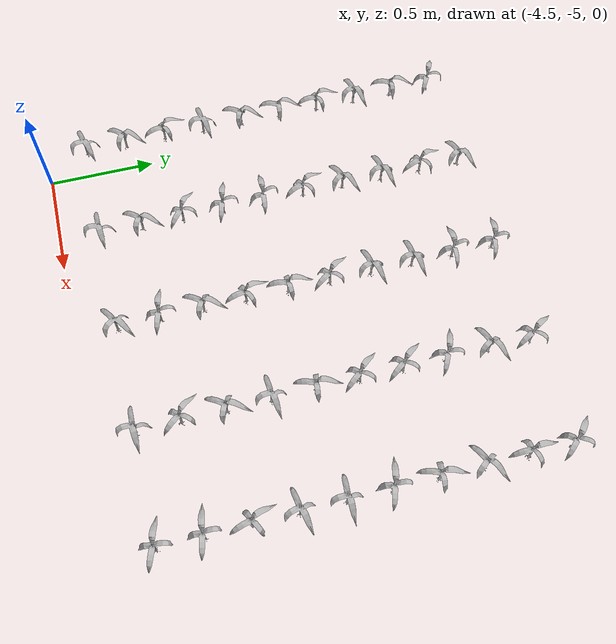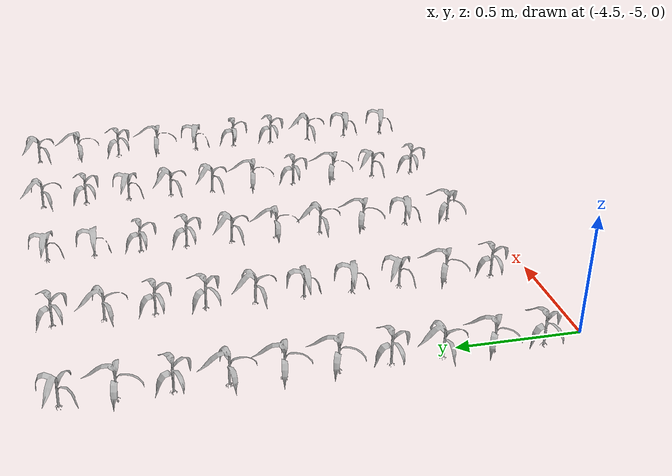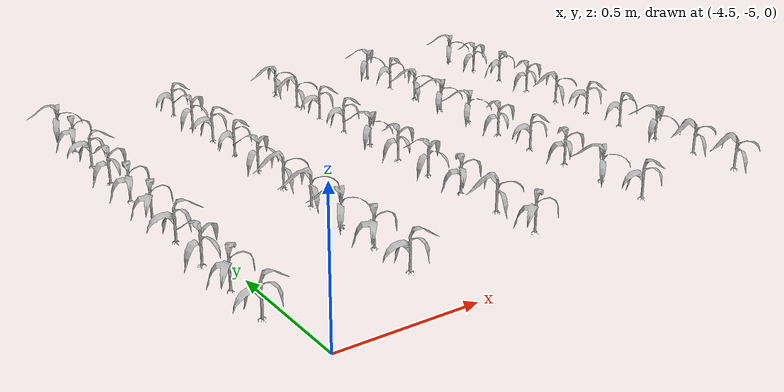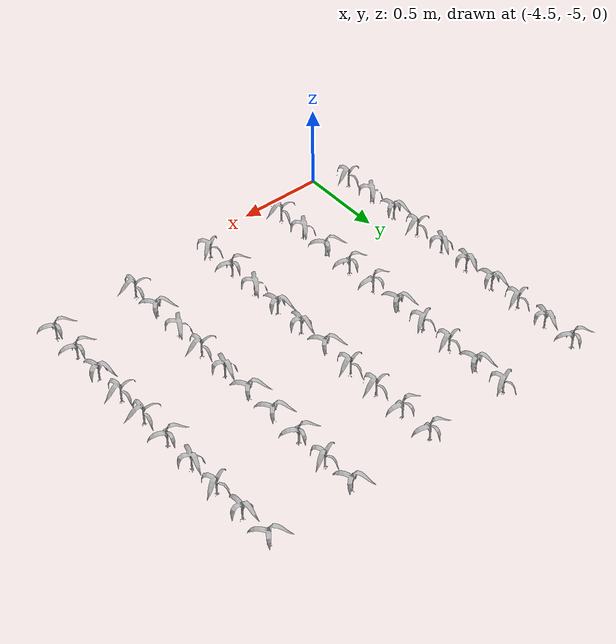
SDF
<sdf version="1.7">
 <world name="default">
  <model name="maize_-4.6_-4.8">
   <static>1</static>
   <link name="link">
    <inertial>
     <mass>0.2</mass>
     <inertia>
      <ixx>0.166667</ixx>
      <ixy>0</ixy>
      <ixz>0</ixz>
      <iyy>0.166667</iyy>
      <iyz>0</iyz>
      <izz>0.166667</izz>
     </inertia>
    </inertial>
    <collision name="collision">
     <geometry><mesh><uri>model://corn_3/meshes/corn.dae</uri><scale>0.25 0.25 0.25</scale></mesh></geometry>
     <surface>
      <friction><ode><mu>0</mu><mu2>0</mu2></ode></friction>
      <contact><ode><kp>0</kp><kd>0</kd><max_vel>0</max_vel><min_depth>0.002</min_depth></ode></contact>
     </surface>
    </collision>
    <visual name="visual">
     <geometry><mesh><uri>model://corn_3/meshes/corn.dae</uri><scale>0.25 0.25 0.25</scale></mesh></geometry>
    </visual>
    <velocity_decay><linear>0</linear><angular>0</angular></velocity_decay>
   </link>
   <pose>-4.6 -4.8 0.05 0 -0 0.344692</pose>
  </model>
  <model name="maize_-4.6_-4.6049999999999995">
   <static>1</static>
   <link name="link">
    <inertial>
     <mass>0.2</mass>
     <inertia>
      <ixx>0.166667</ixx>
      <ixy>0</ixy>
      <ixz>0</ixz>
      <iyy>0.166667</iyy>
      <iyz>0</iyz>
      <izz>0.166667</izz>
     </inertia>
    </inertial>
    <collision name="collision">
     <geometry><mesh><uri>model://corn_3/meshes/corn.dae</uri><scale>0.25 0.25 0.25</scale></mesh></geometry>
     <surface>
      <friction><ode><mu>0</mu><mu2>0</mu2></ode></friction>
      <contact><ode><kp>0</kp><kd>0</kd><max_vel>0</max_vel><min_depth>0.002</min_depth></ode></contact>
     </surface>
    </collision>
    <visual name="visual">
     <geometry><mesh><uri>model://corn_3/meshes/corn.dae</uri><scale>0.25 0.25 0.25</scale></mesh></geometry>
    </visual>
    <velocity_decay><linear>0</linear><angular>0</angular></velocity_decay>
   </link>
   <pose>-4.6 -4.605 0.05 0 -0 1.00106</pose>
  </model>
  <model name="maize_-4.6_-4.41">
   <static>1</static>
   <link name="link">
    <inertial>
     <mass>0.2</mass>
     <inertia>
      <ixx>0.166667</ixx>
      <ixy>0</ixy>
      <ixz>0</ixz>
      <iyy>0.166667</iyy>
      <iyz>0</iyz>
      <izz>0.166667</izz>
     </inertia>
    </inertial>
    <collision name="collision">
     <geometry><mesh><uri>model://corn_3/meshes/corn.dae</uri><scale>0.25 0.25 0.25</scale></mesh></geometry>
     <surface>
      <friction><ode><mu>0</mu><mu2>0</mu2></ode></friction>
      <contact><ode><kp>0</kp><kd>0</kd><max_vel>0</max_vel><min_depth>0.002</min_depth></ode></contact>
     </surface>
    </collision>
    <visual name="visual">
     <geometry><mesh><uri>model://corn_3/meshes/corn.dae</uri><scale>0.25 0.25 0.25</scale></mesh></geometry>
    </visual>
    <velocity_decay><linear>0</linear><angular>0</angular></velocity_decay>
   </link>
   <pose>-4.6 -4.41 0.05 0 -0 1.87486</pose>
  </model>
  <model name="maize_-4.6_-4.215">
   <static>1</static>
   <link name="link">
    <inertial>
     <mass>0.2</mass>
     <inertia>
      <ixx>0.166667</ixx>
      <ixy>0</ixy>
      <ixz>0</ixz>
      <iyy>0.166667</iyy>
      <iyz>0</iyz>
      <izz>0.166667</izz>
     </inertia>
    </inertial>
    <collision name="collision">
     <geometry><mesh><uri>model://corn_3/meshes/corn.dae</uri><scale>0.25 0.25 0.25</scale></mesh></geometry>
     <surface>
      <friction><ode><mu>0</mu><mu2>0</mu2></ode></friction>
      <contact><ode><kp>0</kp><kd>0</kd><max_vel>0</max_vel><min_depth>0.002</min_depth></ode></contact>
     </surface>
    </collision>
    <visual name="visual">
     <geometry><mesh><uri>model://corn_3/meshes/corn.dae</uri><scale>0.25 0.25 0.25</scale></mesh></geometry>
    </visual>
    <velocity_decay><linear>0</linear><angular>0</angular></velocity_decay>
   </link>
   <pose>-4.6 -4.215 0.05 0 -0 0.240081</pose>
  </model>
  <model name="maize_-4.6_-4.02">
   <static>1</static>
   <link name="link">
    <inertial>
     <mass>0.2</mass>
     <inertia>
      <ixx>0.166667</ixx>
      <ixy>0</ixy>
      <ixz>0</ixz>
      <iyy>0.166667</iyy>
      <iyz>0</iyz>
      <izz>0.166667</izz>
     </inertia>
    </inertial>
    <collision name="collision">
     <geometry><mesh><uri>model://corn_3/meshes/corn.dae</uri><scale>0.25 0.25 0.25</scale></mesh></geometry>
     <surface>
      <friction><ode><mu>0</mu><mu2>0</mu2></ode></friction>
      <contact><ode><kp>0</kp><kd>0</kd><max_vel>0</max_vel><min_depth>0.002</min_depth></ode></contact>
     </surface>
    </collision>
    <visual name="visual">
     <geometry><mesh><uri>model://corn_3/meshes/corn.dae</uri><scale>0.25 0.25 0.25</scale></mesh></geometry>
    </visual>
    <velocity_decay><linear>0</linear><angular>0</angular></velocity_decay>
   </link>
   <pose>-4.6 -4.02 0.05 0 -0 1.14849</pose>
  </model>
  <model name="maize_-4.6_-3.8249999999999997">
   <static>1</static>
   <link name="link">
    <inertial>
     <mass>0.2</mass>
     <inertia>
      <ixx>0.166667</ixx>
      <ixy>0</ixy>
      <ixz>0</ixz>
      <iyy>0.166667</iyy>
      <iyz>0</iyz>
      <izz>0.166667</izz>
     </inertia>
    </inertial>
    <collision name="collision">
     <geometry><mesh><uri>model://corn_3/meshes/corn.dae</uri><scale>0.25 0.25 0.25</scale></mesh></geometry>
     <surface>
      <friction><ode><mu>0</mu><mu2>0</mu2></ode></friction>
      <contact><ode><kp>0</kp><kd>0</kd><max_vel>0</max_vel><min_depth>0.002</min_depth></ode></contact>
     </surface>
    </collision>
    <visual name="visual">
     <geometry><mesh><uri>model://corn_3/meshes/corn.dae</uri><scale>0.25 0.25 0.25</scale></mesh></geometry>
    </visual>
    <velocity_decay><linear>0</linear><angular>0</angular></velocity_decay>
   </link>
   <pose>-4.6 -3.825 0.05 0 -0 1.35753</pose>
  </model>
  <model name="maize_-4.6_-3.63">
   <static>1</static>
   <link name="link">
    <inertial>
     <mass>0.2</mass>
     <inertia>
      <ixx>0.166667</ixx>
      <ixy>0</ixy>
      <ixz>0</ixz>
      <iyy>0.166667</iyy>
      <iyz>0</iyz>
      <izz>0.166667</izz>
     </inertia>
    </inertial>
    <collision name="collision">
     <geometry><mesh><uri>model://corn_3/meshes/corn.dae</uri><scale>0.25 0.25 0.25</scale></mesh></geometry>
     <surface>
      <friction><ode><mu>0</mu><mu2>0</mu2></ode></friction>
      <contact><ode><kp>0</kp><kd>0</kd><max_vel>0</max_vel><min_depth>0.002</min_depth></ode></contact>
     </surface>
    </collision>
    <visual name="visual">
     <geometry><mesh><uri>model://corn_3/meshes/corn.dae</uri><scale>0.25 0.25 0.25</scale></mesh></geometry>
    </visual>
    <velocity_decay><linear>0</linear><angular>0</angular></velocity_decay>
   </link>
   <pose>-4.6 -3.63 0.05 0 -0 1.73707</pose>
  </model>
  <model name="maize_-4.6_-3.4349999999999996">
   <static>1</static>
   <link name="link">
    <inertial>
     <mass>0.2</mass>
     <inertia>
      <ixx>0.166667</ixx>
      <ixy>0</ixy>
      <ixz>0</ixz>
      <iyy>0.166667</iyy>
      <iyz>0</iyz>
      <izz>0.166667</izz>
     </inertia>
    </inertial>
    <collision name="collision">
     <geometry><mesh><uri>model://corn_3/meshes/corn.dae</uri><scale>0.25 0.25 0.25</scale></mesh></geometry>
     <surface>
      <friction><ode><mu>0</mu><mu2>0</mu2></ode></friction>
      <contact><ode><kp>0</kp><kd>0</kd><max_vel>0</max_vel><min_depth>0.002</min_depth></ode></contact>
     </surface>
    </collision>
    <visual name="visual">
     <geometry><mesh><uri>model://corn_3/meshes/corn.dae</uri><scale>0.25 0.25 0.25</scale></mesh></geometry>
    </visual>
    <velocity_decay><linear>0</linear><angular>0</angular></velocity_decay>
   </link>
   <pose>-4.6 -3.435 0.05 0 -0 0.358034</pose>
  </model>
  <model name="maize_-4.6_-3.2399999999999998">
   <static>1</static>
   <link name="link">
    <inertial>
     <mass>0.2</mass>
     <inertia>
      <ixx>0.166667</ixx>
      <ixy>0</ixy>
      <ixz>0</ixz>
      <iyy>0.166667</iyy>
      <iyz>0</iyz>
      <izz>0.166667</izz>
     </inertia>
    </inertial>
    <collision name="collision">
     <geometry><mesh><uri>model://corn_3/meshes/corn.dae</uri><scale>0.25 0.25 0.25</scale></mesh></geometry>
     <surface>
      <friction><ode><mu>0</mu><mu2>0</mu2></ode></friction>
      <contact><ode><kp>0</kp><kd>0</kd><max_vel>0</max_vel><min_depth>0.002</min_depth></ode></contact>
     </surface>
    </collision>
    <visual name="visual">
     <geometry><mesh><uri>model://corn_3/meshes/corn.dae</uri><scale>0.25 0.25 0.25</scale></mesh></geometry>
    </visual>
    <velocity_decay><linear>0</linear><angular>0</angular></velocity_decay>
   </link>
   <pose>-4.6 -3.24 0.05 0 -0 1.34912</pose>
  </model>
  <model name="maize_-4.6_-3.045">
   <static>1</static>
   <link name="link">
    <inertial>
     <mass>0.2</mass>
     <inertia>
      <ixx>0.166667</ixx>
      <ixy>0</ixy>
      <ixz>0</ixz>
      <iyy>0.166667</iyy>
      <iyz>0</iyz>
      <izz>0.166667</izz>
     </inertia>
    </inertial>
    <collision name="collision">
     <geometry><mesh><uri>model://corn_3/meshes/corn.dae</uri><scale>0.25 0.25 0.25</scale></mesh></geometry>
     <surface>
      <friction><ode><mu>0</mu><mu2>0</mu2></ode></friction>
      <contact><ode><kp>0</kp><kd>0</kd><max_vel>0</max_vel><min_depth>0.002</min_depth></ode></contact>
     </surface>
    </collision>
    <visual name="visual">
     <geometry><mesh><uri>model://corn_3/meshes/corn.dae</uri><scale>0.25 0.25 0.25</scale></mesh></geometry>
    </visual>
    <velocity_decay><linear>0</linear><angular>0</angular></velocity_decay>
   </link>
   <pose>-4.6 -3.045 0.05 0 -0 2.72526</pose>
  </model>
  <model name="maize_-4.100375_-4.8">
   <static>1</static>
   <link name="link">
    <inertial>
     <mass>0.2</mass>
     <inertia>
      <ixx>0.166667</ixx>
      <ixy>0</ixy>
      <ixz>0</ixz>
      <iyy>0.166667</iyy>
      <iyz>0</iyz>
      <izz>0.166667</izz>
     </inertia>
    </inertial>
    <collision name="collision">
     <geometry><mesh><uri>model://corn_3/meshes/corn.dae</uri><scale>0.25 0.25 0.25</scale></mesh></geometry>
     <surface>
      <friction><ode><mu>0</mu><mu2>0</mu2></ode></friction>
      <contact><ode><kp>0</kp><kd>0</kd><max_vel>0</max_vel><min_depth>0.002</min_depth></ode></contact>
     </surface>
    </collision>
    <visual name="visual">
     <geometry><mesh><uri>model://corn_3/meshes/corn.dae</uri><scale>0.25 0.25 0.25</scale></mesh></geometry>
    </visual>
    <velocity_decay><linear>0</linear><angular>0</angular></velocity_decay>
   </link>
   <pose>-4.10037 -4.8 0.05 0 -0 0.133593</pose>
  </model>
  <model name="maize_-4.100375_-4.6049999999999995">
   <static>1</static>
   <link name="link">
    <inertial>
     <mass>0.2</mass>
     <inertia>
      <ixx>0.166667</ixx>
      <ixy>0</ixy>
      <ixz>0</ixz>
      <iyy>0.166667</iyy>
      <iyz>0</iyz>
      <izz>0.166667</izz>
     </inertia>
    </inertial>
    <collision name="collision">
     <geometry><mesh><uri>model://corn_3/meshes/corn.dae</uri><scale>0.25 0.25 0.25</scale></mesh></geometry>
     <surface>
      <friction><ode><mu>0</mu><mu2>0</mu2></ode></friction>
      <contact><ode><kp>0</kp><kd>0</kd><max_vel>0</max_vel><min_depth>0.002</min_depth></ode></contact>
     </surface>
    </collision>
    <visual name="visual">
     <geometry><mesh><uri>model://corn_3/meshes/corn.dae</uri><scale>0.25 0.25 0.25</scale></mesh></geometry>
    </visual>
    <velocity_decay><linear>0</linear><angular>0</angular></velocity_decay>
   </link>
   <pose>-4.10037 -4.605 0.05 0 -0 1.03842</pose>
  </model>
  <model name="maize_-4.100375_-4.41">
   <static>1</static>
   <link name="link">
    <inertial>
     <mass>0.2</mass>
     <inertia>
      <ixx>0.166667</ixx>
      <ixy>0</ixy>
      <ixz>0</ixz>
      <iyy>0.166667</iyy>
      <iyz>0</iyz>
      <izz>0.166667</izz>
     </inertia>
    </inertial>
    <collision name="collision">
     <geometry><mesh><uri>model://corn_3/meshes/corn.dae</uri><scale>0.25 0.25 0.25</scale></mesh></geometry>
     <surface>
      <friction><ode><mu>0</mu><mu2>0</mu2></ode></friction>
      <contact><ode><kp>0</kp><kd>0</kd><max_vel>0</max_vel><min_depth>0.002</min_depth></ode></contact>
     </surface>
    </collision>
    <visual name="visual">
     <geometry><mesh><uri>model://corn_3/meshes/corn.dae</uri><scale>0.25 0.25 0.25</scale></mesh></geometry>
    </visual>
    <velocity_decay><linear>0</linear><angular>0</angular></velocity_decay>
   </link>
   <pose>-4.10037 -4.41 0.05 0 -0 2.53651</pose>
  </model>
  <model name="maize_-4.100375_-4.215">
   <static>1</static>
   <link name="link">
    <inertial>
     <mass>0.2</mass>
     <inertia>
      <ixx>0.166667</ixx>
      <ixy>0</ixy>
      <ixz>0</ixz>
      <iyy>0.166667</iyy>
      <iyz>0</iyz>
      <izz>0.166667</izz>
     </inertia>
    </inertial>
    <collision name="collision">
     <geometry><mesh><uri>model://corn_3/meshes/corn.dae</uri><scale>0.25 0.25 0.25</scale></mesh></geometry>
     <surface>
      <friction><ode><mu>0</mu><mu2>0</mu2></ode></friction>
      <contact><ode><kp>0</kp><kd>0</kd><max_vel>0</max_vel><min_depth>0.002</min_depth></ode></contact>
     </surface>
    </collision>
    <visual name="visual">
     <geometry><mesh><uri>model://corn_3/meshes/corn.dae</uri><scale>0.25 0.25 0.25</scale></mesh></geometry>
    </visual>
    <velocity_decay><linear>0</linear><angular>0</angular></velocity_decay>
   </link>
   <pose>-4.10037 -4.215 0.05 0 -0 2.95263</pose>
  </model>
  <model name="maize_-4.100375_-4.02">
   <static>1</static>
   <link name="link">
    <inertial>
     <mass>0.2</mass>
     <inertia>
      <ixx>0.166667</ixx>
      <ixy>0</ixy>
      <ixz>0</ixz>
      <iyy>0.166667</iyy>
      <iyz>0</iyz>
      <izz>0.166667</izz>
     </inertia>
    </inertial>
    <collision name="collision">
     <geometry><mesh><uri>model://corn_3/meshes/corn.dae</uri><scale>0.25 0.25 0.25</scale></mesh></geometry>
     <surface>
      <friction><ode><mu>0</mu><mu2>0</mu2></ode></friction>
      <contact><ode><kp>0</kp><kd>0</kd><max_vel>0</max_vel><min_depth>0.002</min_depth></ode></contact>
     </surface>
    </collision>
    <visual name="visual">
     <geometry><mesh><uri>model://corn_3/meshes/corn.dae</uri><scale>0.25 0.25 0.25</scale></mesh></geometry>
    </visual>
    <velocity_decay><linear>0</linear><angular>0</angular></velocity_decay>
   </link>
   <pose>-4.10037 -4.02 0.05 0 -0 3.13382</pose>
  </model>
  <model name="maize_-4.100375_-3.8249999999999997">
   <static>1</static>
   <link name="link">
    <inertial>
     <mass>0.2</mass>
     <inertia>
      <ixx>0.166667</ixx>
      <ixy>0</ixy>
      <ixz>0</ixz>
      <iyy>0.166667</iyy>
      <iyz>0</iyz>
      <izz>0.166667</izz>
     </inertia>
    </inertial>
    <collision name="collision">
     <geometry><mesh><uri>model://corn_3/meshes/corn.dae</uri><scale>0.25 0.25 0.25</scale></mesh></geometry>
     <surface>
      <friction><ode><mu>0</mu><mu2>0</mu2></ode></friction>
      <contact><ode><kp>0</kp><kd>0</kd><max_vel>0</max_vel><min_depth>0.002</min_depth></ode></contact>
     </surface>
    </collision>
    <visual name="visual">
     <geometry><mesh><uri>model://corn_3/meshes/corn.dae</uri><scale>0.25 0.25 0.25</scale></mesh></geometry>
    </visual>
    <velocity_decay><linear>0</linear><angular>0</angular></velocity_decay>
   </link>
   <pose>-4.10037 -3.825 0.05 0 -0 2.07367</pose>
  </model>
  <model name="maize_-4.100375_-3.63">
   <static>1</static>
   <link name="link">
    <inertial>
     <mass>0.2</mass>
     <inertia>
      <ixx>0.166667</ixx>
      <ixy>0</ixy>
      <ixz>0</ixz>
      <iyy>0.166667</iyy>
      <iyz>0</iyz>
      <izz>0.166667</izz>
     </inertia>
    </inertial>
    <collision name="collision">
     <geometry><mesh><uri>model://corn_3/meshes/corn.dae</uri><scale>0.25 0.25 0.25</scale></mesh></geometry>
     <surface>
      <friction><ode><mu>0</mu><mu2>0</mu2></ode></friction>
      <contact><ode><kp>0</kp><kd>0</kd><max_vel>0</max_vel><min_depth>0.002</min_depth></ode></contact>
     </surface>
    </collision>
    <visual name="visual">
     <geometry><mesh><uri>model://corn_3/meshes/corn.dae</uri><scale>0.25 0.25 0.25</scale></mesh></geometry>
    </visual>
    <velocity_decay><linear>0</linear><angular>0</angular></velocity_decay>
   </link>
   <pose>-4.10037 -3.63 0.05 0 -0 0.581346</pose>
  </model>
  <model name="maize_-4.100375_-3.4349999999999996">
   <static>1</static>
   <link name="link">
    <inertial>
     <mass>0.2</mass>
     <inertia>
      <ixx>0.166667</ixx>
      <ixy>0</ixy>
      <ixz>0</ixz>
      <iyy>0.166667</iyy>
      <iyz>0</iyz>
      <izz>0.166667</izz>
     </inertia>
    </inertial>
    <collision name="collision">
     <geometry><mesh><uri>model://corn_3/meshes/corn.dae</uri><scale>0.25 0.25 0.25</scale></mesh></geometry>
     <surface>
      <friction><ode><mu>0</mu><mu2>0</mu2></ode></friction>
      <contact><ode><kp>0</kp><kd>0</kd><max_vel>0</max_vel><min_depth>0.002</min_depth></ode></contact>
     </surface>
    </collision>
    <visual name="visual">
     <geometry><mesh><uri>model://corn_3/meshes/corn.dae</uri><scale>0.25 0.25 0.25</scale></mesh></geometry>
    </visual>
    <velocity_decay><linear>0</linear><angular>0</angular></velocity_decay>
   </link>
   <pose>-4.10037 -3.435 0.05 0 -0 0.344852</pose>
  </model>
  <model name="maize_-4.100375_-3.2399999999999998">
   <static>1</static>
   <link name="link">
    <inertial>
     <mass>0.2</mass>
     <inertia>
      <ixx>0.166667</ixx>
      <ixy>0</ixy>
      <ixz>0</ixz>
      <iyy>0.166667</iyy>
      <iyz>0</iyz>
      <izz>0.166667</izz>
     </inertia>
    </inertial>
    <collision name="collision">
     <geometry><mesh><uri>model://corn_3/meshes/corn.dae</uri><scale>0.25 0.25 0.25</scale></mesh></geometry>
     <surface>
      <friction><ode><mu>0</mu><mu2>0</mu2></ode></friction>
      <contact><ode><kp>0</kp><kd>0</kd><max_vel>0</max_vel><min_depth>0.002</min_depth></ode></contact>
     </surface>
    </collision>
    <visual name="visual">
     <geometry><mesh><uri>model://corn_3/meshes/corn.dae</uri><scale>0.25 0.25 0.25</scale></mesh></geometry>
    </visual>
    <velocity_decay><linear>0</linear><angular>0</angular></velocity_decay>
   </link>
   <pose>-4.10037 -3.24 0.05 0 -0 1.99271</pose>
  </model>
  <model name="maize_-4.100375_-3.045">
   <static>1</static>
   <link name="link">
    <inertial>
     <mass>0.2</mass>
     <inertia>
      <ixx>0.166667</ixx>
      <ixy>0</ixy>
      <ixz>0</ixz>
      <iyy>0.166667</iyy>
      <iyz>0</iyz>
      <izz>0.166667</izz>
     </inertia>
    </inertial>
    <collision name="collision">
     <geometry><mesh><uri>model://corn_3/meshes/corn.dae</uri><scale>0.25 0.25 0.25</scale></mesh></geometry>
     <surface>
      <friction><ode><mu>0</mu><mu2>0</mu2></ode></friction>
      <contact><ode><kp>0</kp><kd>0</kd><max_vel>0</max_vel><min_depth>0.002</min_depth></ode></contact>
     </surface>
    </collision>
    <visual name="visual">
     <geometry><mesh><uri>model://corn_3/meshes/corn.dae</uri><scale>0.25 0.25 0.25</scale></mesh></geometry>
    </visual>
    <velocity_decay><linear>0</linear><angular>0</angular></velocity_decay>
   </link>
   <pose>-4.10037 -3.045 0.05 0 -0 0.511413</pose>
  </model>
  <model name="maize_-3.6014994375_-4.8">
   <static>1</static>
   <link name="link">
    <inertial>
     <mass>0.2</mass>
     <inertia>
      <ixx>0.166667</ixx>
      <ixy>0</ixy>
      <ixz>0</ixz>
      <iyy>0.166667</iyy>
      <iyz>0</iyz>
      <izz>0.166667</izz>
     </inertia>
    </inertial>
    <collision name="collision">
     <geometry><mesh><uri>model://corn_3/meshes/corn.dae</uri><scale>0.25 0.25 0.25</scale></mesh></geometry>
     <surface>
      <friction><ode><mu>0</mu><mu2>0</mu2></ode></friction>
      <contact><ode><kp>0</kp><kd>0</kd><max_vel>0</max_vel><min_depth>0.002</min_depth></ode></contact>
     </surface>
    </collision>
    <visual name="visual">
     <geometry><mesh><uri>model://corn_3/meshes/corn.dae</uri><scale>0.25 0.25 0.25</scale></mesh></geometry>
    </visual>
    <velocity_decay><linear>0</linear><angular>0</angular></velocity_decay>
   </link>
   <pose>-3.6015 -4.8 0.05 0 -0 0.697136</pose>
  </model>
  <model name="maize_-3.6014994375_-4.6049999999999995">
   <static>1</static>
   <link name="link">
    <inertial>
     <mass>0.2</mass>
     <inertia>
      <ixx>0.166667</ixx>
      <ixy>0</ixy>
      <ixz>0</ixz>
      <iyy>0.166667</iyy>
      <iyz>0</iyz>
      <izz>0.166667</izz>
     </inertia>
    </inertial>
    <collision name="collision">
     <geometry><mesh><uri>model://corn_3/meshes/corn.dae</uri><scale>0.25 0.25 0.25</scale></mesh></geometry>
     <surface>
      <friction><ode><mu>0</mu><mu2>0</mu2></ode></friction>
      <contact><ode><kp>0</kp><kd>0</kd><max_vel>0</max_vel><min_depth>0.002</min_depth></ode></contact>
     </surface>
    </collision>
    <visual name="visual">
     <geometry><mesh><uri>model://corn_3/meshes/corn.dae</uri><scale>0.25 0.25 0.25</scale></mesh></geometry>
    </visual>
    <velocity_decay><linear>0</linear><angular>0</angular></velocity_decay>
   </link>
   <pose>-3.6015 -4.605 0.05 0 -0 2.9686</pose>
  </model>
  <model name="maize_-3.6014994375_-4.41">
   <static>1</static>
   <link name="link">
    <inertial>
     <mass>0.2</mass>
     <inertia>
      <ixx>0.166667</ixx>
      <ixy>0</ixy>
      <ixz>0</ixz>
      <iyy>0.166667</iyy>
      <iyz>0</iyz>
      <izz>0.166667</izz>
     </inertia>
    </inertial>
    <collision name="collision">
     <geometry><mesh><uri>model://corn_3/meshes/corn.dae</uri><scale>0.25 0.25 0.25</scale></mesh></geometry>
     <surface>
      <friction><ode><mu>0</mu><mu2>0</mu2></ode></friction>
      <contact><ode><kp>0</kp><kd>0</kd><max_vel>0</max_vel><min_depth>0.002</min_depth></ode></contact>
     </surface>
    </collision>
    <visual name="visual">
     <geometry><mesh><uri>model://corn_3/meshes/corn.dae</uri><scale>0.25 0.25 0.25</scale></mesh></geometry>
    </visual>
    <velocity_decay><linear>0</linear><angular>0</angular></velocity_decay>
   </link>
   <pose>-3.6015 -4.41 0.05 0 -0 1.09526</pose>
  </model>
  <model name="maize_-3.6014994375_-4.215">
   <static>1</static>
   <link name="link">
    <inertial>
     <mass>0.2</mass>
     <inertia>
      <ixx>0.166667</ixx>
      <ixy>0</ixy>
      <ixz>0</ixz>
      <iyy>0.166667</iyy>
      <iyz>0</iyz>
      <izz>0.166667</izz>
     </inertia>
    </inertial>
    <collision name="collision">
     <geometry><mesh><uri>model://corn_3/meshes/corn.dae</uri><scale>0.25 0.25 0.25</scale></mesh></geometry>
     <surface>
      <friction><ode><mu>0</mu><mu2>0</mu2></ode></friction>
      <contact><ode><kp>0</kp><kd>0</kd><max_vel>0</max_vel><min_depth>0.002</min_depth></ode></contact>
     </surface>
    </collision>
    <visual name="visual">
     <geometry><mesh><uri>model://corn_3/meshes/corn.dae</uri><scale>0.25 0.25 0.25</scale></mesh></geometry>
    </visual>
    <velocity_decay><linear>0</linear><angular>0</angular></velocity_decay>
   </link>
   <pose>-3.6015 -4.215 0.05 0 -0 1.89628</pose>
  </model>
  <model name="maize_-3.6014994375_-4.02">
   <static>1</static>
   <link name="link">
    <inertial>
     <mass>0.2</mass>
     <inertia>
      <ixx>0.166667</ixx>
      <ixy>0</ixy>
      <ixz>0</ixz>
      <iyy>0.166667</iyy>
      <iyz>0</iyz>
      <izz>0.166667</izz>
     </inertia>
    </inertial>
    <collision name="collision">
     <geometry><mesh><uri>model://corn_3/meshes/corn.dae</uri><scale>0.25 0.25 0.25</scale></mesh></geometry>
     <surface>
      <friction><ode><mu>0</mu><mu2>0</mu2></ode></friction>
      <contact><ode><kp>0</kp><kd>0</kd><max_vel>0</max_vel><min_depth>0.002</min_depth></ode></contact>
     </surface>
    </collision>
    <visual name="visual">
     <geometry><mesh><uri>model://corn_3/meshes/corn.dae</uri><scale>0.25 0.25 0.25</scale></mesh></geometry>
    </visual>
    <velocity_decay><linear>0</linear><angular>0</angular></velocity_decay>
   </link>
   <pose>-3.6015 -4.02 0.05 0 -0 1.53818</pose>
  </model>
  <model name="maize_-3.6014994375_-3.8249999999999997">
   <static>1</static>
   <link name="link">
    <inertial>
     <mass>0.2</mass>
     <inertia>
      <ixx>0.166667</ixx>
      <ixy>0</ixy>
      <ixz>0</ixz>
      <iyy>0.166667</iyy>
      <iyz>0</iyz>
      <izz>0.166667</izz>
     </inertia>
    </inertial>
    <collision name="collision">
     <geometry><mesh><uri>model://corn_3/meshes/corn.dae</uri><scale>0.25 0.25 0.25</scale></mesh></geometry>
     <surface>
      <friction><ode><mu>0</mu><mu2>0</mu2></ode></friction>
      <contact><ode><kp>0</kp><kd>0</kd><max_vel>0</max_vel><min_depth>0.002</min_depth></ode></contact>
     </surface>
    </collision>
    <visual name="visual">
     <geometry><mesh><uri>model://corn_3/meshes/corn.dae</uri><scale>0.25 0.25 0.25</scale></mesh></geometry>
    </visual>
    <velocity_decay><linear>0</linear><angular>0</angular></velocity_decay>
   </link>
   <pose>-3.6015 -3.825 0.05 0 -0 2.25942</pose>
  </model>
  <model name="maize_-3.6014994375_-3.63">
   <static>1</static>
   <link name="link">
    <inertial>
     <mass>0.2</mass>
     <inertia>
      <ixx>0.166667</ixx>
      <ixy>0</ixy>
      <ixz>0</ixz>
      <iyy>0.166667</iyy>
      <iyz>0</iyz>
      <izz>0.166667</izz>
     </inertia>
    </inertial>
    <collision name="collision">
     <geometry><mesh><uri>model://corn_3/meshes/corn.dae</uri><scale>0.25 0.25 0.25</scale></mesh></geometry>
     <surface>
      <friction><ode><mu>0</mu><mu2>0</mu2></ode></friction>
      <contact><ode><kp>0</kp><kd>0</kd><max_vel>0</max_vel><min_depth>0.002</min_depth></ode></contact>
     </surface>
    </collision>
    <visual name="visual">
     <geometry><mesh><uri>model://corn_3/meshes/corn.dae</uri><scale>0.25 0.25 0.25</scale></mesh></geometry>
    </visual>
    <velocity_decay><linear>0</linear><angular>0</angular></velocity_decay>
   </link>
   <pose>-3.6015 -3.63 0.05 0 -0 0.36742</pose>
  </model>
  <model name="maize_-3.6014994375_-3.4349999999999996">
   <static>1</static>
   <link name="link">
    <inertial>
     <mass>0.2</mass>
     <inertia>
      <ixx>0.166667</ixx>
      <ixy>0</ixy>
      <ixz>0</ixz>
      <iyy>0.166667</iyy>
      <iyz>0</iyz>
      <izz>0.166667</izz>
     </inertia>
    </inertial>
    <collision name="collision">
     <geometry><mesh><uri>model://corn_3/meshes/corn.dae</uri><scale>0.25 0.25 0.25</scale></mesh></geometry>
     <surface>
      <friction><ode><mu>0</mu><mu2>0</mu2></ode></friction>
      <contact><ode><kp>0</kp><kd>0</kd><max_vel>0</max_vel><min_depth>0.002</min_depth></ode></contact>
     </surface>
    </collision>
    <visual name="visual">
     <geometry><mesh><uri>model://corn_3/meshes/corn.dae</uri><scale>0.25 0.25 0.25</scale></mesh></geometry>
    </visual>
    <velocity_decay><linear>0</linear><angular>0</angular></velocity_decay>
   </link>
   <pose>-3.6015 -3.435 0.05 0 -0 0.262981</pose>
  </model>
  <model name="maize_-3.6014994375_-3.2399999999999998">
   <static>1</static>
   <link name="link">
    <inertial>
     <mass>0.2</mass>
     <inertia>
      <ixx>0.166667</ixx>
      <ixy>0</ixy>
      <ixz>0</ixz>
      <iyy>0.166667</iyy>
      <iyz>0</iyz>
      <izz>0.166667</izz>
     </inertia>
    </inertial>
    <collision name="collision">
     <geometry><mesh><uri>model://corn_3/meshes/corn.dae</uri><scale>0.25 0.25 0.25</scale></mesh></geometry>
     <surface>
      <friction><ode><mu>0</mu><mu2>0</mu2></ode></friction>
      <contact><ode><kp>0</kp><kd>0</kd><max_vel>0</max_vel><min_depth>0.002</min_depth></ode></contact>
     </surface>
    </collision>
    <visual name="visual">
     <geometry><mesh><uri>model://corn_3/meshes/corn.dae</uri><scale>0.25 0.25 0.25</scale></mesh></geometry>
    </visual>
    <velocity_decay><linear>0</linear><angular>0</angular></velocity_decay>
   </link>
   <pose>-3.6015 -3.24 0.05 0 -0 3.11693</pose>
  </model>
  <model name="maize_-3.6014994375_-3.045">
   <static>1</static>
   <link name="link">
    <inertial>
     <mass>0.2</mass>
     <inertia>
      <ixx>0.166667</ixx>
      <ixy>0</ixy>
      <ixz>0</ixz>
      <iyy>0.166667</iyy>
      <iyz>0</iyz>
      <izz>0.166667</izz>
     </inertia>
    </inertial>
    <collision name="collision">
     <geometry><mesh><uri>model://corn_3/meshes/corn.dae</uri><scale>0.25 0.25 0.25</scale></mesh></geometry>
     <surface>
      <friction><ode><mu>0</mu><mu2>0</mu2></ode></friction>
      <contact><ode><kp>0</kp><kd>0</kd><max_vel>0</max_vel><min_depth>0.002</min_depth></ode></contact>
     </surface>
    </collision>
    <visual name="visual">
     <geometry><mesh><uri>model://corn_3/meshes/corn.dae</uri><scale>0.25 0.25 0.25</scale></mesh></geometry>
    </visual>
    <velocity_decay><linear>0</linear><angular>0</angular></velocity_decay>
   </link>
   <pose>-3.6015 -3.045 0.05 0 -0 2.96686</pose>
  </model>
  <model name="maize_-3.1033724693828124_-4.8">
   <static>1</static>
   <link name="link">
    <inertial>
     <mass>0.2</mass>
     <inertia>
      <ixx>0.166667</ixx>
      <ixy>0</ixy>
      <ixz>0</ixz>
      <iyy>0.166667</iyy>
      <iyz>0</iyz>
      <izz>0.166667</izz>
     </inertia>
    </inertial>
    <collision name="collision">
     <geometry><mesh><uri>model://corn_3/meshes/corn.dae</uri><scale>0.25 0.25 0.25</scale></mesh></geometry>
     <surface>
      <friction><ode><mu>0</mu><mu2>0</mu2></ode></friction>
      <contact><ode><kp>0</kp><kd>0</kd><max_vel>0</max_vel><min_depth>0.002</min_depth></ode></contact>
     </surface>
    </collision>
    <visual name="visual">
     <geometry><mesh><uri>model://corn_3/meshes/corn.dae</uri><scale>0.25 0.25 0.25</scale></mesh></geometry>
    </visual>
    <velocity_decay><linear>0</linear><angular>0</angular></velocity_decay>
   </link>
   <pose>-3.10337 -4.8 0.05 0 -0 0.08928</pose>
  </model>
  <model name="maize_-3.1033724693828124_-4.6049999999999995">
   <static>1</static>
   <link name="link">
    <inertial>
     <mass>0.2</mass>
     <inertia>
      <ixx>0.166667</ixx>
      <ixy>0</ixy>
      <ixz>0</ixz>
      <iyy>0.166667</iyy>
      <iyz>0</iyz>
      <izz>0.166667</izz>
     </inertia>
    </inertial>
    <collision name="collision">
     <geometry><mesh><uri>model://corn_3/meshes/corn.dae</uri><scale>0.25 0.25 0.25</scale></mesh></geometry>
     <surface>
      <friction><ode><mu>0</mu><mu2>0</mu2></ode></friction>
      <contact><ode><kp>0</kp><kd>0</kd><max_vel>0</max_vel><min_depth>0.002</min_depth></ode></contact>
     </surface>
    </collision>
    <visual name="visual">
     <geometry><mesh><uri>model://corn_3/meshes/corn.dae</uri><scale>0.25 0.25 0.25</scale></mesh></geometry>
    </visual>
    <velocity_decay><linear>0</linear><angular>0</angular></velocity_decay>
   </link>
   <pose>-3.10337 -4.605 0.05 0 -0 2.34975</pose>
  </model>
  <model name="maize_-3.1033724693828124_-4.41">
   <static>1</static>
   <link name="link">
    <inertial>
     <mass>0.2</mass>
     <inertia>
      <ixx>0.166667</ixx>
      <ixy>0</ixy>
      <ixz>0</ixz>
      <iyy>0.166667</iyy>
      <iyz>0</iyz>
      <izz>0.166667</izz>
     </inertia>
    </inertial>
    <collision name="collision">
     <geometry><mesh><uri>model://corn_3/meshes/corn.dae</uri><scale>0.25 0.25 0.25</scale></mesh></geometry>
     <surface>
      <friction><ode><mu>0</mu><mu2>0</mu2></ode></friction>
      <contact><ode><kp>0</kp><kd>0</kd><max_vel>0</max_vel><min_depth>0.002</min_depth></ode></contact>
     </surface>
    </collision>
    <visual name="visual">
     <geometry><mesh><uri>model://corn_3/meshes/corn.dae</uri><scale>0.25 0.25 0.25</scale></mesh></geometry>
    </visual>
    <velocity_decay><linear>0</linear><angular>0</angular></velocity_decay>
   </link>
   <pose>-3.10337 -4.41 0.05 0 -0 1.11202</pose>
  </model>
  <model name="maize_-3.1033724693828124_-4.215">
   <static>1</static>
   <link name="link">
    <inertial>
     <mass>0.2</mass>
     <inertia>
      <ixx>0.166667</ixx>
      <ixy>0</ixy>
      <ixz>0</ixz>
      <iyy>0.166667</iyy>
      <iyz>0</iyz>
      <izz>0.166667</izz>
     </inertia>
    </inertial>
    <collision name="collision">
     <geometry><mesh><uri>model://corn_3/meshes/corn.dae</uri><scale>0.25 0.25 0.25</scale></mesh></geometry>
     <surface>
      <friction><ode><mu>0</mu><mu2>0</mu2></ode></friction>
      <contact><ode><kp>0</kp><kd>0</kd><max_vel>0</max_vel><min_depth>0.002</min_depth></ode></contact>
     </surface>
    </collision>
    <visual name="visual">
     <geometry><mesh><uri>model://corn_3/meshes/corn.dae</uri><scale>0.25 0.25 0.25</scale></mesh></geometry>
    </visual>
    <velocity_decay><linear>0</linear><angular>0</angular></velocity_decay>
   </link>
   <pose>-3.10337 -4.215 0.05 0 -0 0.177651</pose>
  </model>
  <model name="maize_-3.1033724693828124_-4.02">
   <static>1</static>
   <link name="link">
    <inertial>
     <mass>0.2</mass>
     <inertia>
      <ixx>0.166667</ixx>
      <ixy>0</ixy>
      <ixz>0</ixz>
      <iyy>0.166667</iyy>
      <iyz>0</iyz>
      <izz>0.166667</izz>
     </inertia>
    </inertial>
    <collision name="collision">
     <geometry><mesh><uri>model://corn_3/meshes/corn.dae</uri><scale>0.25 0.25 0.25</scale></mesh></geometry>
     <surface>
      <friction><ode><mu>0</mu><mu2>0</mu2></ode></friction>
      <contact><ode><kp>0</kp><kd>0</kd><max_vel>0</max_vel><min_depth>0.002</min_depth></ode></contact>
     </surface>
    </collision>
    <visual name="visual">
     <geometry><mesh><uri>model://corn_3/meshes/corn.dae</uri><scale>0.25 0.25 0.25</scale></mesh></geometry>
    </visual>
    <velocity_decay><linear>0</linear><angular>0</angular></velocity_decay>
   </link>
   <pose>-3.10337 -4.02 0.05 0 -0 1.36887</pose>
  </model>
  <model name="maize_-3.1033724693828124_-3.8249999999999997">
   <static>1</static>
   <link name="link">
    <inertial>
     <mass>0.2</mass>
     <inertia>
      <ixx>0.166667</ixx>
      <ixy>0</ixy>
      <ixz>0</ixz>
      <iyy>0.166667</iyy>
      <iyz>0</iyz>
      <izz>0.166667</izz>
     </inertia>
    </inertial>
    <collision name="collision">
     <geometry><mesh><uri>model://corn_3/meshes/corn.dae</uri><scale>0.25 0.25 0.25</scale></mesh></geometry>
     <surface>
      <friction><ode><mu>0</mu><mu2>0</mu2></ode></friction>
      <contact><ode><kp>0</kp><kd>0</kd><max_vel>0</max_vel><min_depth>0.002</min_depth></ode></contact>
     </surface>
    </collision>
    <visual name="visual">
     <geometry><mesh><uri>model://corn_3/meshes/corn.dae</uri><scale>0.25 0.25 0.25</scale></mesh></geometry>
    </visual>
    <velocity_decay><linear>0</linear><angular>0</angular></velocity_decay>
   </link>
   <pose>-3.10337 -3.825 0.05 0 -0 2.33272</pose>
  </model>
  <model name="maize_-3.1033724693828124_-3.63">
   <static>1</static>
   <link name="link">
    <inertial>
     <mass>0.2</mass>
     <inertia>
      <ixx>0.166667</ixx>
      <ixy>0</ixy>
      <ixz>0</ixz>
      <iyy>0.166667</iyy>
      <iyz>0</iyz>
      <izz>0.166667</izz>
     </inertia>
    </inertial>
    <collision name="collision">
     <geometry><mesh><uri>model://corn_3/meshes/corn.dae</uri><scale>0.25 0.25 0.25</scale></mesh></geometry>
     <surface>
      <friction><ode><mu>0</mu><mu2>0</mu2></ode></friction>
      <contact><ode><kp>0</kp><kd>0</kd><max_vel>0</max_vel><min_depth>0.002</min_depth></ode></contact>
     </surface>
    </collision>
    <visual name="visual">
     <geometry><mesh><uri>model://corn_3/meshes/corn.dae</uri><scale>0.25 0.25 0.25</scale></mesh></geometry>
    </visual>
    <velocity_decay><linear>0</linear><angular>0</angular></velocity_decay>
   </link>
   <pose>-3.10337 -3.63 0.05 0 -0 2.30579</pose>
  </model>
  <model name="maize_-3.1033724693828124_-3.4349999999999996">
   <static>1</static>
   <link name="link">
    <inertial>
     <mass>0.2</mass>
     <inertia>
      <ixx>0.166667</ixx>
      <ixy>0</ixy>
      <ixz>0</ixz>
      <iyy>0.166667</iyy>
      <iyz>0</iyz>
      <izz>0.166667</izz>
     </inertia>
    </inertial>
    <collision name="collision">
     <geometry><mesh><uri>model://corn_3/meshes/corn.dae</uri><scale>0.25 0.25 0.25</scale></mesh></geometry>
     <surface>
      <friction><ode><mu>0</mu><mu2>0</mu2></ode></friction>
      <contact><ode><kp>0</kp><kd>0</kd><max_vel>0</max_vel><min_depth>0.002</min_depth></ode></contact>
     </surface>
    </collision>
    <visual name="visual">
     <geometry><mesh><uri>model://corn_3/meshes/corn.dae</uri><scale>0.25 0.25 0.25</scale></mesh></geometry>
    </visual>
    <velocity_decay><linear>0</linear><angular>0</angular></velocity_decay>
   </link>
   <pose>-3.10337 -3.435 0.05 0 -0 2.78761</pose>
  </model>
  <model name="maize_-3.1033724693828124_-3.2399999999999998">
   <static>1</static>
   <link name="link">
    <inertial>
     <mass>0.2</mass>
     <inertia>
      <ixx>0.166667</ixx>
      <ixy>0</ixy>
      <ixz>0</ixz>
      <iyy>0.166667</iyy>
      <iyz>0</iyz>
      <izz>0.166667</izz>
     </inertia>
    </inertial>
    <collision name="collision">
     <geometry><mesh><uri>model://corn_3/meshes/corn.dae</uri><scale>0.25 0.25 0.25</scale></mesh></geometry>
     <surface>
      <friction><ode><mu>0</mu><mu2>0</mu2></ode></friction>
      <contact><ode><kp>0</kp><kd>0</kd><max_vel>0</max_vel><min_depth>0.002</min_depth></ode></contact>
     </surface>
    </collision>
    <visual name="visual">
     <geometry><mesh><uri>model://corn_3/meshes/corn.dae</uri><scale>0.25 0.25 0.25</scale></mesh></geometry>
    </visual>
    <velocity_decay><linear>0</linear><angular>0</angular></velocity_decay>
   </link>
   <pose>-3.10337 -3.24 0.05 0 -0 0.516885</pose>
  </model>
  <model name="maize_-3.1033724693828124_-3.045">
   <static>1</static>
   <link name="link">
    <inertial>
     <mass>0.2</mass>
     <inertia>
      <ixx>0.166667</ixx>
      <ixy>0</ixy>
      <ixz>0</ixz>
      <iyy>0.166667</iyy>
      <iyz>0</iyz>
      <izz>0.166667</izz>
     </inertia>
    </inertial>
    <collision name="collision">
     <geometry><mesh><uri>model://corn_3/meshes/corn.dae</uri><scale>0.25 0.25 0.25</scale></mesh></geometry>
     <surface>
      <friction><ode><mu>0</mu><mu2>0</mu2></ode></friction>
      <contact><ode><kp>0</kp><kd>0</kd><max_vel>0</max_vel><min_depth>0.002</min_depth></ode></contact>
     </surface>
    </collision>
    <visual name="visual">
     <geometry><mesh><uri>model://corn_3/meshes/corn.dae</uri><scale>0.25 0.25 0.25</scale></mesh></geometry>
    </visual>
    <velocity_decay><linear>0</linear><angular>0</angular></velocity_decay>
   </link>
   <pose>-3.10337 -3.045 0.05 0 -0 2.17222</pose>
  </model>
  <model name="maize_-2.605993253374367_-4.8">
   <static>1</static>
   <link name="link">
    <inertial>
     <mass>0.2</mass>
     <inertia>
      <ixx>0.166667</ixx>
      <ixy>0</ixy>
      <ixz>0</ixz>
      <iyy>0.166667</iyy>
      <iyz>0</iyz>
      <izz>0.166667</izz>
     </inertia>
    </inertial>
    <collision name="collision">
     <geometry><mesh><uri>model://corn_3/meshes/corn.dae</uri><scale>0.25 0.25 0.25</scale></mesh></geometry>
     <surface>
      <friction><ode><mu>0</mu><mu2>0</mu2></ode></friction>
      <contact><ode><kp>0</kp><kd>0</kd><max_vel>0</max_vel><min_depth>0.002</min_depth></ode></contact>
     </surface>
    </collision>
    <visual name="visual">
     <geometry><mesh><uri>model://corn_3/meshes/corn.dae</uri><scale>0.25 0.25 0.25</scale></mesh></geometry>
    </visual>
    <velocity_decay><linear>0</linear><angular>0</angular></velocity_decay>
   </link>
   <pose>-2.60599 -4.8 0.05 0 -0 2.89127</pose>
  </model>
  <model name="maize_-2.605993253374367_-4.6049999999999995">
   <static>1</static>
   <link name="link">
    <inertial>
     <mass>0.2</mass>
     <inertia>
      <ixx>0.166667</ixx>
      <ixy>0</ixy>
      <ixz>0</ixz>
      <iyy>0.166667</iyy>
      <iyz>0</iyz>
      <izz>0.166667</izz>
     </inertia>
    </inertial>
    <collision name="collision">
     <geometry><mesh><uri>model://corn_3/meshes/corn.dae</uri><scale>0.25 0.25 0.25</scale></mesh></geometry>
     <surface>
      <friction><ode><mu>0</mu><mu2>0</mu2></ode></friction>
      <contact><ode><kp>0</kp><kd>0</kd><max_vel>0</max_vel><min_depth>0.002</min_depth></ode></contact>
     </surface>
    </collision>
    <visual name="visual">
     <geometry><mesh><uri>model://corn_3/meshes/corn.dae</uri><scale>0.25 0.25 0.25</scale></mesh></geometry>
    </visual>
    <velocity_decay><linear>0</linear><angular>0</angular></velocity_decay>
   </link>
   <pose>-2.60599 -4.605 0.05 0 -0 3.00765</pose>
  </model>
  <model name="maize_-2.605993253374367_-4.41">
   <static>1</static>
   <link name="link">
    <inertial>
     <mass>0.2</mass>
     <inertia>
      <ixx>0.166667</ixx>
      <ixy>0</ixy>
      <ixz>0</ixz>
      <iyy>0.166667</iyy>
      <iyz>0</iyz>
      <izz>0.166667</izz>
     </inertia>
    </inertial>
    <collision name="collision">
     <geometry><mesh><uri>model://corn_3/meshes/corn.dae</uri><scale>0.25 0.25 0.25</scale></mesh></geometry>
     <surface>
      <friction><ode><mu>0</mu><mu2>0</mu2></ode></friction>
      <contact><ode><kp>0</kp><kd>0</kd><max_vel>0</max_vel><min_depth>0.002</min_depth></ode></contact>
     </surface>
    </collision>
    <visual name="visual">
     <geometry><mesh><uri>model://corn_3/meshes/corn.dae</uri><scale>0.25 0.25 0.25</scale></mesh></geometry>
    </visual>
    <velocity_decay><linear>0</linear><angular>0</angular></velocity_decay>
   </link>
   <pose>-2.60599 -4.41 0.05 0 -0 1.9594</pose>
  </model>
  <model name="maize_-2.605993253374367_-4.215">
   <static>1</static>
   <link name="link">
    <inertial>
     <mass>0.2</mass>
     <inertia>
      <ixx>0.166667</ixx>
      <ixy>0</ixy>
      <ixz>0</ixz>
      <iyy>0.166667</iyy>
      <iyz>0</iyz>
      <izz>0.166667</izz>
     </inertia>
    </inertial>
    <collision name="collision">
     <geometry><mesh><uri>model://corn_3/meshes/corn.dae</uri><scale>0.25 0.25 0.25</scale></mesh></geometry>
     <surface>
      <friction><ode><mu>0</mu><mu2>0</mu2></ode></friction>
      <contact><ode><kp>0</kp><kd>0</kd><max_vel>0</max_vel><min_depth>0.002</min_depth></ode></contact>
     </surface>
    </collision>
    <visual name="visual">
     <geometry><mesh><uri>model://corn_3/meshes/corn.dae</uri><scale>0.25 0.25 0.25</scale></mesh></geometry>
    </visual>
    <velocity_decay><linear>0</linear><angular>0</angular></velocity_decay>
   </link>
   <pose>-2.60599 -4.215 0.05 0 -0 0.260194</pose>
  </model>
  <model name="maize_-2.605993253374367_-4.02">
   <static>1</static>
   <link name="link">
    <inertial>
     <mass>0.2</mass>
     <inertia>
      <ixx>0.166667</ixx>
      <ixy>0</ixy>
      <ixz>0</ixz>
      <iyy>0.166667</iyy>
      <iyz>0</iyz>
      <izz>0.166667</izz>
     </inertia>
    </inertial>
    <collision name="collision">
     <geometry><mesh><uri>model://corn_3/meshes/corn.dae</uri><scale>0.25 0.25 0.25</scale></mesh></geometry>
     <surface>
      <friction><ode><mu>0</mu><mu2>0</mu2></ode></friction>
      <contact><ode><kp>0</kp><kd>0</kd><max_vel>0</max_vel><min_depth>0.002</min_depth></ode></contact>
     </surface>
    </collision>
    <visual name="visual">
     <geometry><mesh><uri>model://corn_3/meshes/corn.dae</uri><scale>0.25 0.25 0.25</scale></mesh></geometry>
    </visual>
    <velocity_decay><linear>0</linear><angular>0</angular></velocity_decay>
   </link>
   <pose>-2.60599 -4.02 0.05 0 -0 0.03912</pose>
  </model>
  <model name="maize_-2.605993253374367_-3.8249999999999997">
   <static>1</static>
   <link name="link">
    <inertial>
     <mass>0.2</mass>
     <inertia>
      <ixx>0.166667</ixx>
      <ixy>0</ixy>
      <ixz>0</ixz>
      <iyy>0.166667</iyy>
      <iyz>0</iyz>
      <izz>0.166667</izz>
     </inertia>
    </inertial>
    <collision name="collision">
     <geometry><mesh><uri>model://corn_3/meshes/corn.dae</uri><scale>0.25 0.25 0.25</scale></mesh></geometry>
     <surface>
      <friction><ode><mu>0</mu><mu2>0</mu2></ode></friction>
      <contact><ode><kp>0</kp><kd>0</kd><max_vel>0</max_vel><min_depth>0.002</min_depth></ode></contact>
     </surface>
    </collision>
    <visual name="visual">
     <geometry><mesh><uri>model://corn_3/meshes/corn.dae</uri><scale>0.25 0.25 0.25</scale></mesh></geometry>
    </visual>
    <velocity_decay><linear>0</linear><angular>0</angular></velocity_decay>
   </link>
   <pose>-2.60599 -3.825 0.05 0 -0 2.91604</pose>
  </model>
  <model name="maize_-2.605993253374367_-3.63">
   <static>1</static>
   <link name="link">
    <inertial>
     <mass>0.2</mass>
     <inertia>
      <ixx>0.166667</ixx>
      <ixy>0</ixy>
      <ixz>0</ixz>
      <iyy>0.166667</iyy>
      <iyz>0</iyz>
      <izz>0.166667</izz>
     </inertia>
    </inertial>
    <collision name="collision">
     <geometry><mesh><uri>model://corn_3/meshes/corn.dae</uri><scale>0.25 0.25 0.25</scale></mesh></geometry>
     <surface>
      <friction><ode><mu>0</mu><mu2>0</mu2></ode></friction>
      <contact><ode><kp>0</kp><kd>0</kd><max_vel>0</max_vel><min_depth>0.002</min_depth></ode></contact>
     </surface>
    </collision>
    <visual name="visual">
     <geometry><mesh><uri>model://corn_3/meshes/corn.dae</uri><scale>0.25 0.25 0.25</scale></mesh></geometry>
    </visual>
    <velocity_decay><linear>0</linear><angular>0</angular></velocity_decay>
   </link>
   <pose>-2.60599 -3.63 0.05 0 -0 1.3645</pose>
  </model>
  <model name="maize_-2.605993253374367_-3.4349999999999996">
   <static>1</static>
   <link name="link">
    <inertial>
     <mass>0.2</mass>
     <inertia>
      <ixx>0.166667</ixx>
      <ixy>0</ixy>
      <ixz>0</ixz>
      <iyy>0.166667</iyy>
      <iyz>0</iyz>
      <izz>0.166667</izz>
     </inertia>
    </inertial>
    <collision name="collision">
     <geometry><mesh><uri>model://corn_3/meshes/corn.dae</uri><scale>0.25 0.25 0.25</scale></mesh></geometry>
     <surface>
      <friction><ode><mu>0</mu><mu2>0</mu2></ode></friction>
      <contact><ode><kp>0</kp><kd>0</kd><max_vel>0</max_vel><min_depth>0.002</min_depth></ode></contact>
     </surface>
    </collision>
    <visual name="visual">
     <geometry><mesh><uri>model://corn_3/meshes/corn.dae</uri><scale>0.25 0.25 0.25</scale></mesh></geometry>
    </visual>
    <velocity_decay><linear>0</linear><angular>0</angular></velocity_decay>
   </link>
   <pose>-2.60599 -3.435 0.05 0 -0 0.582404</pose>
  </model>
  <model name="maize_-2.605993253374367_-3.2399999999999998">
   <static>1</static>
   <link name="link">
    <inertial>
     <mass>0.2</mass>
     <inertia>
      <ixx>0.166667</ixx>
      <ixy>0</ixy>
      <ixz>0</ixz>
      <iyy>0.166667</iyy>
      <iyz>0</iyz>
      <izz>0.166667</izz>
     </inertia>
    </inertial>
    <collision name="collision">
     <geometry><mesh><uri>model://corn_3/meshes/corn.dae</uri><scale>0.25 0.25 0.25</scale></mesh></geometry>
     <surface>
      <friction><ode><mu>0</mu><mu2>0</mu2></ode></friction>
      <contact><ode><kp>0</kp><kd>0</kd><max_vel>0</max_vel><min_depth>0.002</min_depth></ode></contact>
     </surface>
    </collision>
    <visual name="visual">
     <geometry><mesh><uri>model://corn_3/meshes/corn.dae</uri><scale>0.25 0.25 0.25</scale></mesh></geometry>
    </visual>
    <velocity_decay><linear>0</linear><angular>0</angular></velocity_decay>
   </link>
   <pose>-2.60599 -3.24 0.05 0 -0 1.6776</pose>
  </model>
  <model name="maize_-2.605993253374367_-3.045">
   <static>1</static>
   <link name="link">
    <inertial>
     <mass>0.2</mass>
     <inertia>
      <ixx>0.166667</ixx>
      <ixy>0</ixy>
      <ixz>0</ixz>
      <iyy>0.166667</iyy>
      <iyz>0</iyz>
      <izz>0.166667</izz>
     </inertia>
    </inertial>
    <collision name="collision">
     <geometry><mesh><uri>model://corn_3/meshes/corn.dae</uri><scale>0.25 0.25 0.25</scale></mesh></geometry>
     <surface>
      <friction><ode><mu>0</mu><mu2>0</mu2></ode></friction>
      <contact><ode><kp>0</kp><kd>0</kd><max_vel>0</max_vel><min_depth>0.002</min_depth></ode></contact>
     </surface>
    </collision>
    <visual name="visual">
     <geometry><mesh><uri>model://corn_3/meshes/corn.dae</uri><scale>0.25 0.25 0.25</scale></mesh></geometry>
    </visual>
    <velocity_decay><linear>0</linear><angular>0</angular></velocity_decay>
   </link>
   <pose>-2.60599 -3.045 0.05 0 -0 2.41683</pose>
  </model>
 </world>
</sdf>
